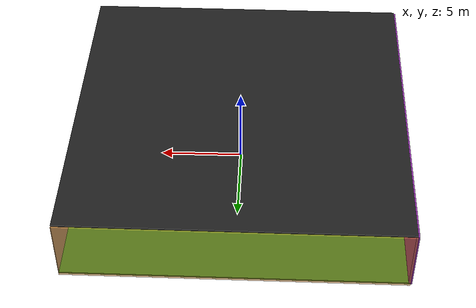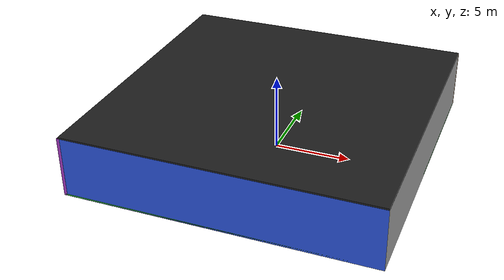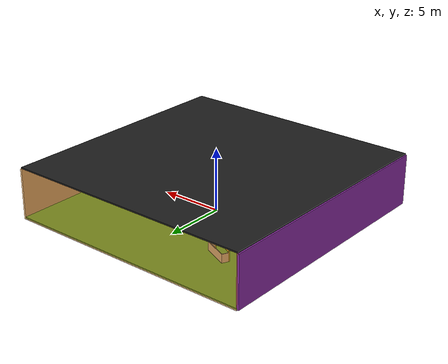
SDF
<sdf version="1.4">
 <world name="default">
  <physics type="ode">
   <max_step_size>0.001</max_step_size>
   <real_time_factor>1</real_time_factor>
   <real_time_update_rate>1000</real_time_update_rate>
   <gravity>0 0 -9.8</gravity>
  </physics>
  <scene><ambient>0.4 0.4 0.4 1</ambient><background>0.7 0.7 0.7 1</background><shadows>1</shadows></scene>
  <model name="Surrounding">
   <static>1</static>
   <link name="Ceiling">
    <collision name="Ceiling_Collision"><geometry><box><size>20 20 0.1</size></box></geometry></collision>
    <visual name="Ceiling_Visual">
     <geometry><box><size>20 20 0.1</size></box></geometry>
     <material>
      <script><uri>file://media/materials/scripts/gazebo.material</uri><name>Gazebo/Black</name></script>
     </material>
    </visual>
    <pose>0 0 4.05 0 0 0</pose>
   </link>
   <link name="Wall_South">
    <collision name="Wall_South_Collision">
     <geometry><box><size>20 0 4</size></box></geometry>
     <pose>0 0 2 0 -0 0</pose>
    </collision>
    <visual name="Wall_South_Visual">
     <pose>0 0 2 0 -0 0</pose>
     <geometry><box><size>20 0 4</size></box></geometry>
     <material>
      <script><uri>file://media/materials/scripts/gazebo.material</uri><name>Gazebo/BlueGlow</name></script>
     </material>
    </visual>
    <velocity_decay><linear>0</linear><angular>0</angular></velocity_decay>
    <pose>0 -10 0 0 -0 0</pose>
   </link>
   <link name="Wall_East">
    <collision name="Wall_21_Collision">
     <geometry><box><size>20 0 4</size></box></geometry>
     <pose>0 0 2 0 -0 0</pose>
    </collision>
    <visual name="Wall_21_Visual">
     <pose>0 0 2 0 -0 0</pose>
     <geometry><box><size>20 0 4</size></box></geometry>
     <material>
      <script><uri>file://media/materials/scripts/gazebo.material</uri><name>Gazebo/CloudySky</name></script>
     </material>
    </visual>
    <velocity_decay><linear>0</linear><angular>0</angular></velocity_decay>
    <pose>10 0 0 0 -0 1.5708</pose>
   </link>
   <link name="Wall_North">
    <collision name="Wall_22_Collision">
     <geometry><box><size>20 0.2 4</size></box></geometry>
     <pose>0 0 2 0 -0 0</pose>
    </collision>
    <visual name="Wall_22_Visual">
     <pose>0 0 2 0 -0 0</pose>
     <geometry><box><size>20 0.2 4</size></box></geometry>
     <material>
      <script>
       <uri>file://media/materials/scripts/gazebo.material</uri>
       <name>Gazebo/OrangeTransparent</name>
      </script>
     </material>
    </visual>
    <velocity_decay><linear>0</linear><angular>0</angular></velocity_decay>
    <pose>0 10 0 0 -0 0</pose>
   </link>
   <link name="Wall_West">
    <collision name="Wall_23_Collision">
     <geometry><box><size>20 0.2 4</size></box></geometry>
     <pose>0 0 2 0 -0 0</pose>
    </collision>
    <visual name="Wall_23_Visual">
     <pose>0 0 2 0 -0 0</pose>
     <geometry><box><size>20 0.2 4</size></box></geometry>
     <material>
      <script><uri>file://media/materials/scripts/gazebo.material</uri><name>Gazebo/Purple</name></script>
     </material>
    </visual>
    <velocity_decay><linear>0</linear><angular>0</angular></velocity_decay>
    <pose>-10 0 0 0 0 -1.5708</pose>
   </link>
   <link name="Ground_link">
    <collision name="collision">
     <pose>0 0 .05 0 -0 0</pose>
     <geometry><box><size>20 20 0.1</size></box></geometry>
    </collision>
    <visual name="visual">
     <pose>0 0 .05 0 -0 0</pose>
     <geometry><box><size>20 20 0.1</size></box></geometry>
     <material>
      <script><uri>file://media/materials/scripts/gazebo.material</uri><name>Gazebo/GreenGlow</name></script>
     </material>
    </visual>
   </link>
   <static>1</static>
  </model>
  <spherical_coordinates>
   <surface_model>EARTH_WGS84</surface_model>
   <latitude_deg>0</latitude_deg>
   <longitude_deg>0</longitude_deg>
   <elevation>0</elevation>
   <heading_deg>0</heading_deg>
  </spherical_coordinates>
  <light name="lightball_0" type="diffuse">
   <diffuse>0.8 0.8 0.8 1</diffuse>
   <specular>0.2 0.2 0.2 1</specular>
   <attenuation>
    <range>100</range>
    <constant>0.7</constant>
    <linear>0.01</linear>
    <quadratic>0.001</quadratic>
   </attenuation>
   <direction>-0.5 0.1 -0.9</direction>
   <pose>3.07179107127 7.09446293404 1.6008336024 0 0 0</pose>
  </light>
  <light name="lightball_1" type="diffuse">
   <diffuse>0.8 0.8 0.8 1</diffuse>
   <specular>0.2 0.2 0.2 1</specular>
   <attenuation>
    <range>100</range>
    <constant>0.7</constant>
    <linear>0.01</linear>
    <quadratic>0.001</quadratic>
   </attenuation>
   <direction>-0.5 0.1 -0.9</direction>
   <pose>-4.32172123798 4.31577422943 3.51529780989 0 0 0</pose>
  </light>
  <light name="lightball_2" type="diffuse">
   <diffuse>0.8 0.8 0.8 1</diffuse>
   <specular>0.2 0.2 0.2 1</specular>
   <attenuation>
    <range>100</range>
    <constant>0.7</constant>
    <linear>0.01</linear>
    <quadratic>0.001</quadratic>
   </attenuation>
   <direction>-0.5 0.1 -0.9</direction>
   <pose>-0.347818769624 -6.44008506019 0.572498944338 0 0 0</pose>
  </light>
  <light name="lightball_3" type="diffuse">
   <diffuse>0.8 0.8 0.8 1</diffuse>
   <specular>0.2 0.2 0.2 1</specular>
   <attenuation>
    <range>100</range>
    <constant>0.7</constant>
    <linear>0.01</linear>
    <quadratic>0.001</quadratic>
   </attenuation>
   <direction>-0.5 0.1 -0.9</direction>
   <pose>5.77382737067 8.48793182859 2.55203106034 0 0 0</pose>
  </light>
  <light name="lightball_4" type="diffuse">
   <diffuse>0.8 0.8 0.8 1</diffuse>
   <specular>0.2 0.2 0.2 1</specular>
   <attenuation>
    <range>100</range>
    <constant>0.7</constant>
    <linear>0.01</linear>
    <quadratic>0.001</quadratic>
   </attenuation>
   <direction>-0.5 0.1 -0.9</direction>
   <pose>-4.62038783472 -1.24830796355 3.51790600016 0 0 0</pose>
  </light>
  <light name="lightball_5" type="diffuse">
   <diffuse>0.8 0.8 0.8 1</diffuse>
   <specular>0.2 0.2 0.2 1</specular>
   <attenuation>
    <range>100</range>
    <constant>0.7</constant>
    <linear>0.01</linear>
    <quadratic>0.001</quadratic>
   </attenuation>
   <direction>-0.5 0.1 -0.9</direction>
   <pose>-4.71161648688 4.0278920316 3.4286326395 0 0 0</pose>
  </light>
  <light name="lightball_6" type="diffuse">
   <diffuse>0.8 0.8 0.8 1</diffuse>
   <specular>0.2 0.2 0.2 1</specular>
   <attenuation>
    <range>100</range>
    <constant>0.7</constant>
    <linear>0.01</linear>
    <quadratic>0.001</quadratic>
   </attenuation>
   <direction>-0.5 0.1 -0.9</direction>
   <pose>6.17032432588 -6.30717832003 0.807733475756 0 0 0</pose>
  </light>
  <light name="lightball_7" type="diffuse">
   <diffuse>0.8 0.8 0.8 1</diffuse>
   <specular>0.2 0.2 0.2 1</specular>
   <attenuation>
    <range>100</range>
    <constant>0.7</constant>
    <linear>0.01</linear>
    <quadratic>0.001</quadratic>
   </attenuation>
   <direction>-0.5 0.1 -0.9</direction>
   <pose>-7.24815647207 8.25883519159 0.756178369394 0 0 0</pose>
  </light>
  <include><uri>model://cabinet</uri><pose>-5.08807431619 -4.34827485963 0 0 0 1.61250797842</pose></include>
  <include><uri>model://cabinet</uri><pose>-3.8750724657 1.42414028619 0 0 0 0.173763880024</pose></include>
  <include>
   <uri>model://robocup_3Dsim_goal</uri>
   <pose>-4.82607124209 5.19611730499 0 0 0 1.14553135472</pose>
  </include>
  <include>
   <uri>model://textured_shapes</uri>
   <pose>3.8900006755 -7.48947571687 0 0 0 0.9043970804</pose>
  </include>
 </world>
</sdf>

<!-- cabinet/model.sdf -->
<sdf version="1.5">
  <model name="cabinet">
    <static>true</static>
    <link name="cabinet_bottom_plate">
      <inertial>
        <pose>0 0 -1 0 0 0</pose>
        <inertia>
          <ixx>2.050000</ixx>
          <ixy>0</ixy>
          <ixz>0</ixz>
          <iyy>2.050000</iyy>
          <iyz>0</iyz>
          <izz>2.050000</izz>
        </inertia>
        <mass>25.000000</mass>
      </inertial>
      <collision name="cabinet_bottom_plate_geom">
        <pose>0 0 0.010000 0 0 0</pose>
        <geometry>
          <box>
            <size>0.450000 0.450000 0.020000</size>
          </box>
        </geometry>
      </collision>
      <visual name="cabinet_bottom_plate_geom_visual">
        <pose>0 0 0.010000 0 0 0</pose>
        <geometry>
          <box>
            <size>0.450000 0.450000 0.020000</size>
          </box>
        </geometry>
        <material>
          <script>
            <uri>model://media/materials/scripts/gazebo.material</uri>
            <name>Gazebo/Wood</name>
          </script>
        </material>
      </visual>
      <collision name="cabinet_bottom_plate_geom_cabinet_back_plate">
        <pose>0.235000 0 0.510000 0 0 0</pose>
        <geometry>
          <box>
            <size>0.020000 0.450000 1.020000</size>
          </box>
        </geometry>
      </collision>
      <visual name="cabinet_bottom_plate_geom_cabinet_back_plate_visual">
        <pose>0.235000 0 0.510000 0 0 0</pose>
        <geometry>
          <box>
            <size>0.020000 0.450000 1.020000</size>
          </box>
        </geometry>
        <material>
          <script>
            <uri>model://media/materials/scripts/gazebo.material</uri>
            <name>Gazebo/Wood</name>
          </script>
        </material>
      </visual>
      <collision name="cabinet_bottom_plate_geom_cabinet_left_plate">
        <pose>0 0.235000 0.510000 0 0 0</pose>
        <geometry>
          <box>
            <size>0.450000 0.020000 1.020000</size>
          </box>
        </geometry>
      </collision>
      <visual name="cabinet_bottom_plate_geom_cabinet_left_plate_visual">
        <pose>0 0.235000 0.510000 0 0 0</pose>
        <geometry>
          <box>
            <size>0.450000 0.020000 1.020000</size>
          </box>
        </geometry>
        <material>
          <script>
            <uri>model://media/materials/scripts/gazebo.material</uri>
            <name>Gazebo/Wood</name>
          </script>
        </material>
      </visual>
      <collision name="cabinet_bottom_plate_geom_cabinet_middle_plate">
        <pose>0 0 0.510000 0 0 0</pose>
        <geometry>
          <box>
            <size>0.450000 0.450000 0.020000</size>
          </box>
        </geometry>
      </collision>
      <visual name="cabinet_bottom_plate_geom_cabinet_middle_plate_visual">
        <pose>0 0 0.510000 0 0 0</pose>
        <geometry>
          <box>
            <size>0.450000 0.450000 0.020000</size>
          </box>
        </geometry>
        <material>
          <script>
            <uri>model://media/materials/scripts/gazebo.material</uri>
            <name>Gazebo/Wood</name>
          </script>
        </material>
      </visual>
      <collision name="cabinet_bottom_plate_geom_cabinet_right_plate">
        <pose>0 -0.235000 0.510000 0 0 0</pose>
        <geometry>
          <box>
            <size>0.450000 0.020000 1.020000</size>
          </box>
        </geometry>
      </collision>
      <visual name="cabinet_bottom_plate_geom_cabinet_right_plate_visual">
        <pose>0 -0.235000 0.510000 0 0 0</pose>
        <geometry>
          <box>
            <size>0.450000 0.020000 1.020000</size>
          </box>
        </geometry>
        <material>
          <script>
            <uri>model://media/materials/scripts/gazebo.material</uri>
            <name>Gazebo/Wood</name>
          </script>
        </material>
      </visual>
      <collision name="cabinet_bottom_plate_geom_cabinet_top_plate">
        <pose>0 0 1.010000 0 0 0</pose>
        <geometry>
          <box>
            <size>0.450000 0.450000 0.020000</size>
          </box>
        </geometry>
      </collision>
      <visual name="cabinet_bottom_plate_geom_cabinet_top_plate_visual">
        <pose>0 0 1.010000 0 0 0</pose>
        <geometry>
          <box>
            <size>0.450000 0.450000 0.020000</size>
          </box>
        </geometry>
        <material>
          <script>
            <uri>model://media/materials/scripts/gazebo.material</uri>
            <name>Gazebo/Wood</name>
          </script>
        </material>
      </visual>
    </link>
  </model>
</sdf>

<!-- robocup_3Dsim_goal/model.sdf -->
<sdf version="1.5">
  <model name="robocup_3d_goal">
    <static>true</static>
    <link name="left_post">
      <pose>0 1.05 0.45 0 0 0</pose>
      <collision name="collision">
        <geometry>
          <cylinder>
            <radius>0.05</radius>
            <length>0.9</length>
          </cylinder>
        </geometry>
      </collision>
      <visual name="visual">
        <geometry>
          <cylinder>
            <radius>0.05</radius>
            <length>0.9</length>
          </cylinder>
        </geometry>
        <material>
          <script>
            <uri>file://media/materials/scripts/gazebo.material</uri>
            <name>Gazebo/ZincYellow</name>
          </script>
        </material>
      </visual>
    </link>
    <link name="left_support_horiz_lower">
      <pose>0.30 1.05 0.01 0 0 0</pose>
      <collision name="collision">
        <geometry>
          <box>
            <size>0.50 0.02 0.02</size>
          </box>
        </geometry>
      </collision>
      <visual name="visual">
        <geometry>
          <box>
            <size>0.50 0.02 0.02</size>
          </box>
        </geometry>
        <material>
          <script>
            <uri>file://media/materials/scripts/gazebo.material</uri>
            <name>Gazebo/White</name>
          </script>
        </material>
      </visual>
    </link>
    <link name="left_support_horiz_upper">
      <pose>0.30 1.05 0.79 0 0 0</pose>
      <collision name="collision">
        <geometry>
          <box>
            <size>0.50 0.02 0.02</size>
          </box>
        </geometry>
      </collision>
      <visual name="visual">
        <geometry>
          <box>
            <size>0.50 0.02 0.02</size>
          </box>
        </geometry>
        <material>
          <script>
            <uri>file://media/materials/scripts/gazebo.material</uri>
            <name>Gazebo/White</name>
          </script>
        </material>
      </visual>
    </link>
    <link name="left_support_vertical">
      <pose>0.56 1.05 0.4 0 1.5708 0</pose>
      <collision name="collision">
        <geometry>
          <box>
            <size>0.80 0.02 0.02</size>
          </box>
        </geometry>
      </collision>
      <visual name="visual">
        <geometry>
          <box>
            <size>0.80 0.02 0.02</size>
          </box>
        </geometry>
        <material>
          <script>
            <uri>file://media/materials/scripts/gazebo.material</uri>
            <name>Gazebo/White</name>
          </script>
        </material>
      </visual>
    </link>
    <link name="right_support_horiz_lower">
      <pose>0.30 -1.05 0.01 0 0 0</pose>
      <collision name="collision">
        <geometry>
          <box>
            <size>0.50 0.02 0.02</size>
          </box>
        </geometry>
      </collision>
      <visual name="visual">
        <geometry>
          <box>
            <size>0.50 0.02 0.02</size>
          </box>
        </geometry>
        <material>
          <script>
            <uri>file://media/materials/scripts/gazebo.material</uri>
            <name>Gazebo/White</name>
          </script>
        </material>
      </visual>
    </link>
    <link name="right_support_horiz_upper">
      <pose>0.30 -1.05 0.79 0 0 0</pose>
      <collision name="collision">
        <geometry>
          <box>
            <size>0.50 0.02 0.02</size>
          </box>
        </geometry>
      </collision>
      <visual name="visual">
        <geometry>
          <box>
            <size>0.50 0.02 0.02</size>
          </box>
        </geometry>
        <material>
          <script>
            <uri>file://media/materials/scripts/gazebo.material</uri>
            <name>Gazebo/White</name>
          </script>
        </material>
      </visual>
    </link>
    <link name="right_support_vertical">
      <pose>0.56 -1.05 0.4 0 1.5708 0</pose>
      <collision name="collision">
        <geometry>
          <box>
            <size>0.80 0.02 0.02</size>
          </box>
        </geometry>
      </collision>
      <visual name="visual">
        <geometry>
          <box>
            <size>0.80 0.02 0.02</size>
          </box>
        </geometry>
        <material>
          <script>
            <uri>file://media/materials/scripts/gazebo.material</uri>
            <name>Gazebo/White</name>
          </script>
        </material>
      </visual>
    </link>
    <link name="center_support_horiz_lower">
      <pose>0.56 0 0.01 0 1.5708 0</pose>
      <collision name="collision">
        <geometry>
          <box>
            <size>0.02 2.08 0.02</size>
          </box>
        </geometry>
      </collision>
      <visual name="visual">
        <geometry>
          <box>
            <size>0.02 2.08 0.02</size>
          </box>
        </geometry>
        <material>
          <script>
            <uri>file://media/materials/scripts/gazebo.material</uri>
            <name>Gazebo/White</name>
          </script>
        </material>
      </visual>
    </link>
    <link name="center_support_horiz_upper">
      <pose>0.56 0 0.79 0 1.5708 0</pose>
      <collision name="collision">
        <geometry>
          <box>
            <size>0.02 2.08 0.02</size>
          </box>
        </geometry>
      </collision>
      <visual name="visual">
        <geometry>
          <box>
            <size>0.02 2.08 0.02</size>
          </box>
        </geometry>
        <material>
          <script>
            <uri>file://media/materials/scripts/gazebo.material</uri>
            <name>Gazebo/White</name>
          </script>
        </material>
      </visual>
    </link>
    <link name="right_post">
      <pose>0 -1.05 0.45 0 0 0</pose>
      <collision name="collision">
        <geometry>
          <cylinder>
            <radius>0.05</radius>
            <length>0.9</length>
          </cylinder>
        </geometry>
      </collision>
      <visual name="visual">
        <geometry>
          <cylinder>
            <radius>0.05</radius>
            <length>0.9</length>
          </cylinder>
        </geometry>
        <material>
          <script>
            <uri>file://media/materials/scripts/gazebo.material</uri>
            <name>Gazebo/ZincYellow</name>
          </script>
        </material>
      </visual>
    </link>
    <link name="crossbar">
      <pose>0 0 0.85 1.57 1.57 0</pose>
      <collision name="collision">
        <geometry>
          <cylinder>
            <radius>0.05</radius>
            <length>2.0</length>
          </cylinder>
        </geometry>
      </collision>
      <visual name="visual">
        <geometry>
          <cylinder>
            <radius>0.05</radius>
            <length>2.0</length>
          </cylinder>
        </geometry>
        <material>
          <script>
            <uri>file://media/materials/scripts/gazebo.material</uri>
            <name>Gazebo/ZincYellow</name>
          </script>
        </material>
      </visual>
    </link>
    <link name="center_net">
      <pose>0.56 0 0.40 0 0 0</pose>
      <collision name="collision">
        <geometry>
          <box>
            <size>0.01 2.1 0.80</size>
          </box>
        </geometry>
      </collision>
      <visual name="visual">
        <geometry>
          <box>
            <size>0.01 2.1 0.80</size>
          </box>
        </geometry>
        <material>
          <script>
            <uri>model://../model_source/models/robocup09_spl_field/materials/scripts/</uri>
            <uri>model://../model_source/models/robocup09_spl_field/materials/textures/</uri>
            <name>RoboCup/Net</name>
          </script>
        </material>
      </visual>
    </link>
    <link name="left_net">
      <pose>0.30 1.05 0.40 0 0 0</pose>
      <collision name="collision">
        <geometry>
          <box>
            <size>0.50 0.01 0.76</size>
          </box>
        </geometry>
      </collision>
      <visual name="visual">
        <geometry>
          <box>
            <size>0.50 0.01 0.76</size>
          </box>
        </geometry>
        <material>
          <script>
            <uri>model://../model_source/models/robocup09_spl_field/materials/scripts/</uri>
            <uri>model://../model_source/models/robocup09_spl_field/materials/textures/</uri>
            <name>RoboCup/Net</name>
          </script>
        </material>
      </visual>
    </link>
    <link name="right_net">
      <pose>0.30 -1.05 0.40 0 0 0</pose>
      <collision name="collision">
        <geometry>
          <box>
            <size>0.50 0.01 0.76</size>
          </box>
        </geometry>
      </collision>
      <visual name="visual">
        <geometry>
          <box>
            <size>0.50 0.01 0.76</size>
          </box>
        </geometry>
        <material>
          <script>
            <uri>model://../model_source/models/robocup09_spl_field/materials/scripts/</uri>
            <uri>model://../model_source/models/robocup09_spl_field/materials/textures/</uri>
            <name>RoboCup/Net</name>
          </script>
        </material>
      </visual>
    </link>
  </model>
</sdf>

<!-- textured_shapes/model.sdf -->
<sdf version="1.6">
  <model name="textured_shapes">
    <pose>0 0 0.5 0 0 0</pose>
    <link name="box">
      <pose>0 -1.5 0 0 0 0</pose>
      <collision name="collision">
        <geometry>
          <box>
            <size>1 1 1</size>
          </box>
        </geometry>
      </collision>
      <visual name="visual">
        <geometry>
          <box>
            <size>1 1 1</size>
          </box>
        </geometry>
        <material>
          <script>
            <uri>model://../model_source/models/textured_shapes/materials/scripts</uri>
            <uri>model://../model_source/models/textured_shapes/materials/textures</uri>
            <name>TexturedShape/Squares</name>
          </script>
        </material>
      </visual>
    </link>
    <link name="sphere">
      <collision name="collision">
        <geometry>
          <sphere>
            <radius>0.5</radius>
          </sphere>
        </geometry>
      </collision>
      <visual name="visual">
        <geometry>
          <sphere>
            <radius>0.5</radius>
          </sphere>
        </geometry>
        <material>
          <script>
            <uri>model://../model_source/models/textured_shapes/materials/scripts</uri>
            <uri>model://../model_source/models/textured_shapes/materials/textures</uri>
            <name>TexturedShape/Squares</name>
          </script>
        </material>
      </visual>
    </link>
    <link name="cylinder">
      <pose>0 1.5 0 0 0 0</pose>
      <collision name="collision">
        <geometry>
          <cylinder>
            <radius>0.5</radius>
            <length>1</length>
          </cylinder>
        </geometry>
      </collision>
      <visual name="visual">
        <geometry>
          <cylinder>
            <radius>0.5</radius>
            <length>1</length>
          </cylinder>
        </geometry>
        <material>
          <script>
            <uri>model://../model_source/models/textured_shapes/materials/scripts</uri>
            <uri>model://../model_source/models/textured_shapes/materials/textures</uri>
            <name>TexturedShape/Squares</name>
          </script>
        </material>
      </visual>
    </link>
  </model>
</sdf>
